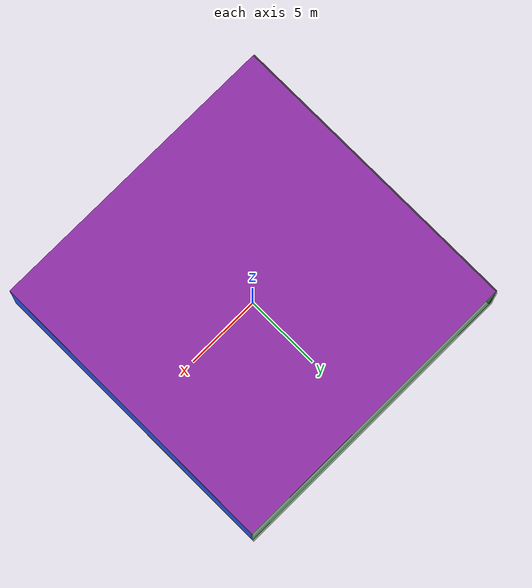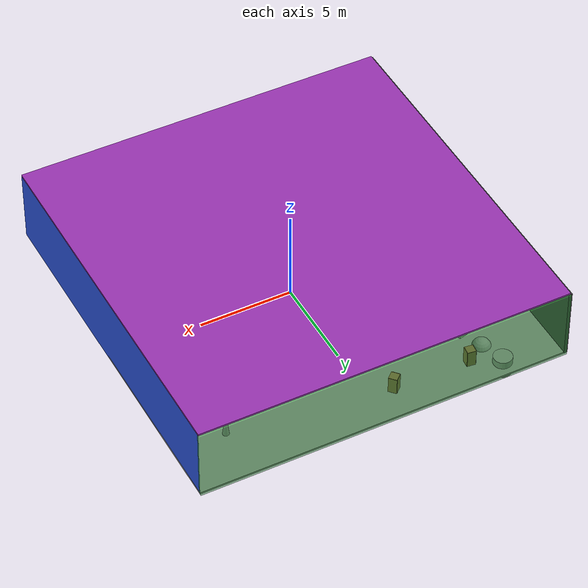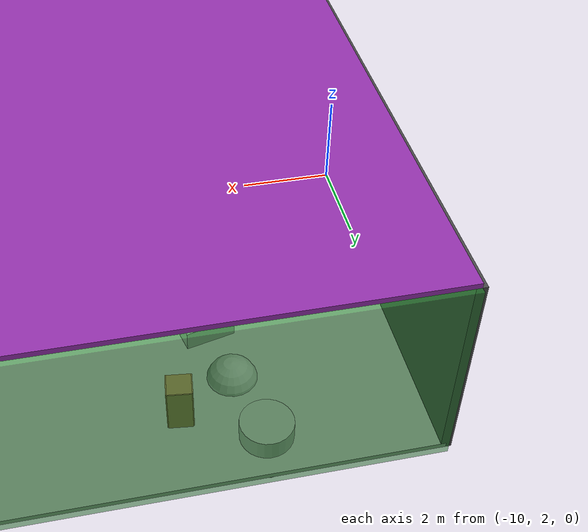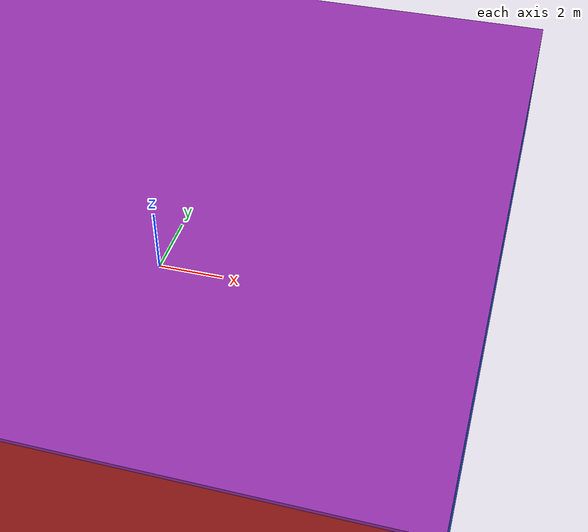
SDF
<sdf version="1.4">
 <world name="default">
  <physics type="ode">
   <max_step_size>0.001</max_step_size>
   <real_time_factor>1</real_time_factor>
   <real_time_update_rate>1000</real_time_update_rate>
   <gravity>0 0 -9.8</gravity>
  </physics>
  <scene><ambient>0.4 0.4 0.4 1</ambient><background>0.7 0.7 0.7 1</background><shadows>1</shadows></scene>
  <model name="Surrounding">
   <static>1</static>
   <link name="Ceiling">
    <collision name="Ceiling_Collision"><geometry><box><size>20 20 0.1</size></box></geometry></collision>
    <visual name="Ceiling_Visual">
     <geometry><box><size>20 20 0.1</size></box></geometry>
     <material>
      <script><uri>file://media/materials/scripts/gazebo.material</uri><name>Gazebo/Purple</name></script>
     </material>
    </visual>
    <pose>0 0 4.05 0 0 0</pose>
   </link>
   <link name="Wall_South">
    <collision name="Wall_South_Collision">
     <geometry><box><size>20 0 4</size></box></geometry>
     <pose>0 0 2 0 -0 0</pose>
    </collision>
    <visual name="Wall_South_Visual">
     <pose>0 0 2 0 -0 0</pose>
     <geometry><box><size>20 0 4</size></box></geometry>
     <material>
      <script><uri>file://media/materials/scripts/gazebo.material</uri><name>Gazebo/Red</name></script>
     </material>
    </visual>
    <velocity_decay><linear>0</linear><angular>0</angular></velocity_decay>
    <pose>0 -10 0 0 -0 0</pose>
   </link>
   <link name="Wall_East">
    <collision name="Wall_21_Collision">
     <geometry><box><size>20 0 4</size></box></geometry>
     <pose>0 0 2 0 -0 0</pose>
    </collision>
    <visual name="Wall_21_Visual">
     <pose>0 0 2 0 -0 0</pose>
     <geometry><box><size>20 0 4</size></box></geometry>
     <material>
      <script><uri>file://media/materials/scripts/gazebo.material</uri><name>Gazebo/Blue</name></script>
     </material>
    </visual>
    <velocity_decay><linear>0</linear><angular>0</angular></velocity_decay>
    <pose>10 0 0 0 -0 1.5708</pose>
   </link>
   <link name="Wall_North">
    <collision name="Wall_22_Collision">
     <geometry><box><size>20 0.2 4</size></box></geometry>
     <pose>0 0 2 0 -0 0</pose>
    </collision>
    <visual name="Wall_22_Visual">
     <pose>0 0 2 0 -0 0</pose>
     <geometry><box><size>20 0.2 4</size></box></geometry>
     <material>
      <script><uri>file://media/materials/scripts/gazebo.material</uri><name>Gazebo/GreenTransparent</name></script>
     </material>
    </visual>
    <velocity_decay><linear>0</linear><angular>0</angular></velocity_decay>
    <pose>0 10 0 0 -0 0</pose>
   </link>
   <link name="Wall_West">
    <collision name="Wall_23_Collision">
     <geometry><box><size>20 0.2 4</size></box></geometry>
     <pose>0 0 2 0 -0 0</pose>
    </collision>
    <visual name="Wall_23_Visual">
     <pose>0 0 2 0 -0 0</pose>
     <geometry><box><size>20 0.2 4</size></box></geometry>
     <material>
      <script><uri>file://media/materials/scripts/gazebo.material</uri><name>Gazebo/Road</name></script>
     </material>
    </visual>
    <velocity_decay><linear>0</linear><angular>0</angular></velocity_decay>
    <pose>-10 0 0 0 0 -1.5708</pose>
   </link>
   <link name="Ground_link">
    <collision name="collision">
     <pose>0 0 .05 0 -0 0</pose>
     <geometry><box><size>20 20 0.1</size></box></geometry>
    </collision>
    <visual name="visual">
     <pose>0 0 .05 0 -0 0</pose>
     <geometry><box><size>20 20 0.1</size></box></geometry>
     <material>
      <script><uri>file://media/materials/scripts/gazebo.material</uri><name>Gazebo/PioneerBody</name></script>
     </material>
    </visual>
   </link>
   <static>1</static>
  </model>
  <spherical_coordinates>
   <surface_model>EARTH_WGS84</surface_model>
   <latitude_deg>0</latitude_deg>
   <longitude_deg>0</longitude_deg>
   <elevation>0</elevation>
   <heading_deg>0</heading_deg>
  </spherical_coordinates>
  <light name="lightball_0" type="diffuse">
   <diffuse>0.8 0.8 0.8 1</diffuse>
   <specular>0.2 0.2 0.2 1</specular>
   <attenuation>
    <range>100</range>
    <constant>0.7</constant>
    <linear>0.01</linear>
    <quadratic>0.001</quadratic>
   </attenuation>
   <direction>-0.5 0.1 -0.9</direction>
   <pose>-4.95154682948 -8.18401057148 0.764674197385 0 0 0</pose>
  </light>
  <light name="lightball_1" type="diffuse">
   <diffuse>0.8 0.8 0.8 1</diffuse>
   <specular>0.2 0.2 0.2 1</specular>
   <attenuation>
    <range>100</range>
    <constant>0.7</constant>
    <linear>0.01</linear>
    <quadratic>0.001</quadratic>
   </attenuation>
   <direction>-0.5 0.1 -0.9</direction>
   <pose>-7.71244976139 -8.8622279514 3.39946719728 0 0 0</pose>
  </light>
  <light name="lightball_2" type="diffuse">
   <diffuse>0.8 0.8 0.8 1</diffuse>
   <specular>0.2 0.2 0.2 1</specular>
   <attenuation>
    <range>100</range>
    <constant>0.7</constant>
    <linear>0.01</linear>
    <quadratic>0.001</quadratic>
   </attenuation>
   <direction>-0.5 0.1 -0.9</direction>
   <pose>2.19648888638 5.62561967707 3.3125101601 0 0 0</pose>
  </light>
  <light name="lightball_3" type="diffuse">
   <diffuse>0.8 0.8 0.8 1</diffuse>
   <specular>0.2 0.2 0.2 1</specular>
   <attenuation>
    <range>100</range>
    <constant>0.7</constant>
    <linear>0.01</linear>
    <quadratic>0.001</quadratic>
   </attenuation>
   <direction>-0.5 0.1 -0.9</direction>
   <pose>-3.13320553038 6.84816311078 0.663209785382 0 0 0</pose>
  </light>
  <light name="lightball_4" type="diffuse">
   <diffuse>0.8 0.8 0.8 1</diffuse>
   <specular>0.2 0.2 0.2 1</specular>
   <attenuation>
    <range>100</range>
    <constant>0.7</constant>
    <linear>0.01</linear>
    <quadratic>0.001</quadratic>
   </attenuation>
   <direction>-0.5 0.1 -0.9</direction>
   <pose>8.490384792 -3.85134804998 1.19644163496 0 0 0</pose>
  </light>
  <light name="lightball_5" type="diffuse">
   <diffuse>0.8 0.8 0.8 1</diffuse>
   <specular>0.2 0.2 0.2 1</specular>
   <attenuation>
    <range>100</range>
    <constant>0.7</constant>
    <linear>0.01</linear>
    <quadratic>0.001</quadratic>
   </attenuation>
   <direction>-0.5 0.1 -0.9</direction>
   <pose>2.02691567785 -3.02675067591 2.43057190421 0 0 0</pose>
  </light>
  <light name="lightball_6" type="diffuse">
   <diffuse>0.8 0.8 0.8 1</diffuse>
   <specular>0.2 0.2 0.2 1</specular>
   <attenuation>
    <range>100</range>
    <constant>0.7</constant>
    <linear>0.01</linear>
    <quadratic>0.001</quadratic>
   </attenuation>
   <direction>-0.5 0.1 -0.9</direction>
   <pose>8.23673119801 8.38935874934 0.699088551549 0 0 0</pose>
  </light>
  <light name="lightball_7" type="diffuse">
   <diffuse>0.8 0.8 0.8 1</diffuse>
   <specular>0.2 0.2 0.2 1</specular>
   <attenuation>
    <range>100</range>
    <constant>0.7</constant>
    <linear>0.01</linear>
    <quadratic>0.001</quadratic>
   </attenuation>
   <direction>-0.5 0.1 -0.9</direction>
   <pose>-6.70878184247 -9.11736056216 2.70221138967 0 0 0</pose>
  </light>
  <light name="lightball_8" type="diffuse">
   <diffuse>0.8 0.8 0.8 1</diffuse>
   <specular>0.2 0.2 0.2 1</specular>
   <attenuation>
    <range>100</range>
    <constant>0.7</constant>
    <linear>0.01</linear>
    <quadratic>0.001</quadratic>
   </attenuation>
   <direction>-0.5 0.1 -0.9</direction>
   <pose>6.91306633483 -3.57635393341 0.68755867755 0 0 0</pose>
  </light>
  <light name="lightball_9" type="diffuse">
   <diffuse>0.8 0.8 0.8 1</diffuse>
   <specular>0.2 0.2 0.2 1</specular>
   <attenuation>
    <range>100</range>
    <constant>0.7</constant>
    <linear>0.01</linear>
    <quadratic>0.001</quadratic>
   </attenuation>
   <direction>-0.5 0.1 -0.9</direction>
   <pose>0.999119689778 -1.66045854987 0.997134703617 0 0 0</pose>
  </light>
  <include><uri>model://table</uri><pose>-7.28342559452 -1.48605227714 0 0 0 2.03809423267</pose></include>
  <include>
   <uri>model://robocup_3Dsim_goal</uri>
   <pose>-8.00737211646 5.39984622139 0 0 0 1.07306505724</pose>
  </include>
  <include>
   <uri>model://textured_shapes</uri>
   <pose>-6.55567738715 7.71762416987 0 0 0 0.228201330051</pose>
  </include>
  <include><uri>model://cabinet</uri><pose>-5.449104761 8.4564138327 0 0 0 1.45297052096</pose></include>
  <include><uri>model://cabinet</uri><pose>-1.72737456582 -4.50509867403 0 0 0 0.895668442067</pose></include>
  <include><uri>model://cabinet</uri><pose>-1.28992028689 8.33927600339 0 0 0 2.2997547853</pose></include>
  <include>
   <uri>model://robocup_3Dsim_goal</uri>
   <pose>5.06433082707 -1.29613379253 0 0 0 1.960650678</pose>
  </include>
  <include><uri>model://cabinet</uri><pose>6.50919565776 1.16618792196 0 0 0 0.0407928468412</pose></include>
  <include>
   <uri>model://construction_cone</uri>
   <pose>7.22551240845 7.18029311811 0 0 0 0.00294631741811</pose>
  </include>
 </world>
</sdf>

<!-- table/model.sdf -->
<sdf version="1.5">
  <model name="table">
    <static>true</static>
    <link name="link">
      <collision name="surface">
        <pose>0 0 1.0 0 0 0</pose>
        <geometry>
          <box>
            <size>1.5 0.8 0.03</size>
          </box>
        </geometry>
        <surface>
          <friction>
            <ode>
              <mu>0.6</mu>
              <mu2>0.6</mu2>
            </ode>
          </friction>
        </surface>
      </collision>
      <visual name="visual1">
        <pose>0 0 1.0 0 0 0</pose>
        <geometry>
          <box>
            <size>1.5 0.8 0.03</size>
          </box>
        </geometry>
        <material>
          <script>
            <uri>model://media/materials/scripts/gazebo.material</uri>
            <name>Gazebo/Wood</name>
          </script>
        </material>
      </visual>
      <collision name="front_left_leg">
        <pose>0.68 0.38 0.5 0 0 0</pose>
        <geometry>
          <cylinder>
            <radius>0.02</radius>
            <length>1.0</length>
          </cylinder>
        </geometry>
      </collision>
      <visual name="front_left_leg">
        <pose>0.68 0.38 0.5 0 0 0</pose>
        <geometry>
          <cylinder>
            <radius>0.02</radius>
            <length>1.0</length>
          </cylinder>
        </geometry>
        <material>
          <script>
            <uri>model://media/materials/scripts/gazebo.material</uri>
            <name>Gazebo/Grey</name>
          </script>
        </material>
      </visual>
      <collision name="front_right_leg">
        <pose>0.68 -0.38 0.5 0 0 0</pose>
        <geometry>
          <cylinder>
            <radius>0.02</radius>
            <length>1.0</length>
          </cylinder>
        </geometry>
      </collision>
      <visual name="front_right_leg">
        <pose>0.68 -0.38 0.5 0 0 0</pose>
        <geometry>
          <cylinder>
            <radius>0.02</radius>
            <length>1.0</length>
          </cylinder>
        </geometry>
        <material>
          <script>
            <uri>model://media/materials/scripts/gazebo.material</uri>
            <name>Gazebo/Grey</name>
          </script>
        </material>
      </visual>
      <collision name="back_right_leg">
        <pose>-0.68 -0.38 0.5 0 0 0</pose>
        <geometry>
          <cylinder>
            <radius>0.02</radius>
            <length>1.0</length>
          </cylinder>
        </geometry>
      </collision>
      <visual name="back_right_leg">
        <pose>-0.68 -0.38 0.5 0 0 0</pose>
        <geometry>
          <cylinder>
            <radius>0.02</radius>
            <length>1.0</length>
          </cylinder>
        </geometry>
        <material>
          <script>
            <uri>model://media/materials/scripts/gazebo.material</uri>
            <name>Gazebo/Grey</name>
          </script>
        </material>
      </visual>
      <collision name="back_left_leg">
        <pose>-0.68 0.38 0.5 0 0 0</pose>
        <geometry>
          <cylinder>
            <radius>0.02</radius>
            <length>1.0</length>
          </cylinder>
        </geometry>
      </collision>
      <visual name="back_left_leg">
        <pose>-0.68 0.38 0.5 0 0 0</pose>
        <geometry>
          <cylinder>
            <radius>0.02</radius>
            <length>1.0</length>
          </cylinder>
        </geometry>
        <material>
          <script>
            <uri>model://media/materials/scripts/gazebo.material</uri>
            <name>Gazebo/Grey</name>
          </script>
        </material>
      </visual>
    </link>
  </model>
</sdf>

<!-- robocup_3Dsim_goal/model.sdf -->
<sdf version="1.5">
  <model name="robocup_3d_goal">
    <static>true</static>
    <link name="left_post">
      <pose>0 1.05 0.45 0 0 0</pose>
      <collision name="collision">
        <geometry>
          <cylinder>
            <radius>0.05</radius>
            <length>0.9</length>
          </cylinder>
        </geometry>
      </collision>
      <visual name="visual">
        <geometry>
          <cylinder>
            <radius>0.05</radius>
            <length>0.9</length>
          </cylinder>
        </geometry>
        <material>
          <script>
            <uri>file://media/materials/scripts/gazebo.material</uri>
            <name>Gazebo/ZincYellow</name>
          </script>
        </material>
      </visual>
    </link>
    <link name="left_support_horiz_lower">
      <pose>0.30 1.05 0.01 0 0 0</pose>
      <collision name="collision">
        <geometry>
          <box>
            <size>0.50 0.02 0.02</size>
          </box>
        </geometry>
      </collision>
      <visual name="visual">
        <geometry>
          <box>
            <size>0.50 0.02 0.02</size>
          </box>
        </geometry>
        <material>
          <script>
            <uri>file://media/materials/scripts/gazebo.material</uri>
            <name>Gazebo/White</name>
          </script>
        </material>
      </visual>
    </link>
    <link name="left_support_horiz_upper">
      <pose>0.30 1.05 0.79 0 0 0</pose>
      <collision name="collision">
        <geometry>
          <box>
            <size>0.50 0.02 0.02</size>
          </box>
        </geometry>
      </collision>
      <visual name="visual">
        <geometry>
          <box>
            <size>0.50 0.02 0.02</size>
          </box>
        </geometry>
        <material>
          <script>
            <uri>file://media/materials/scripts/gazebo.material</uri>
            <name>Gazebo/White</name>
          </script>
        </material>
      </visual>
    </link>
    <link name="left_support_vertical">
      <pose>0.56 1.05 0.4 0 1.5708 0</pose>
      <collision name="collision">
        <geometry>
          <box>
            <size>0.80 0.02 0.02</size>
          </box>
        </geometry>
      </collision>
      <visual name="visual">
        <geometry>
          <box>
            <size>0.80 0.02 0.02</size>
          </box>
        </geometry>
        <material>
          <script>
            <uri>file://media/materials/scripts/gazebo.material</uri>
            <name>Gazebo/White</name>
          </script>
        </material>
      </visual>
    </link>
    <link name="right_support_horiz_lower">
      <pose>0.30 -1.05 0.01 0 0 0</pose>
      <collision name="collision">
        <geometry>
          <box>
            <size>0.50 0.02 0.02</size>
          </box>
        </geometry>
      </collision>
      <visual name="visual">
        <geometry>
          <box>
            <size>0.50 0.02 0.02</size>
          </box>
        </geometry>
        <material>
          <script>
            <uri>file://media/materials/scripts/gazebo.material</uri>
            <name>Gazebo/White</name>
          </script>
        </material>
      </visual>
    </link>
    <link name="right_support_horiz_upper">
      <pose>0.30 -1.05 0.79 0 0 0</pose>
      <collision name="collision">
        <geometry>
          <box>
            <size>0.50 0.02 0.02</size>
          </box>
        </geometry>
      </collision>
      <visual name="visual">
        <geometry>
          <box>
            <size>0.50 0.02 0.02</size>
          </box>
        </geometry>
        <material>
          <script>
            <uri>file://media/materials/scripts/gazebo.material</uri>
            <name>Gazebo/White</name>
          </script>
        </material>
      </visual>
    </link>
    <link name="right_support_vertical">
      <pose>0.56 -1.05 0.4 0 1.5708 0</pose>
      <collision name="collision">
        <geometry>
          <box>
            <size>0.80 0.02 0.02</size>
          </box>
        </geometry>
      </collision>
      <visual name="visual">
        <geometry>
          <box>
            <size>0.80 0.02 0.02</size>
          </box>
        </geometry>
        <material>
          <script>
            <uri>file://media/materials/scripts/gazebo.material</uri>
            <name>Gazebo/White</name>
          </script>
        </material>
      </visual>
    </link>
    <link name="center_support_horiz_lower">
      <pose>0.56 0 0.01 0 1.5708 0</pose>
      <collision name="collision">
        <geometry>
          <box>
            <size>0.02 2.08 0.02</size>
          </box>
        </geometry>
      </collision>
      <visual name="visual">
        <geometry>
          <box>
            <size>0.02 2.08 0.02</size>
          </box>
        </geometry>
        <material>
          <script>
            <uri>file://media/materials/scripts/gazebo.material</uri>
            <name>Gazebo/White</name>
          </script>
        </material>
      </visual>
    </link>
    <link name="center_support_horiz_upper">
      <pose>0.56 0 0.79 0 1.5708 0</pose>
      <collision name="collision">
        <geometry>
          <box>
            <size>0.02 2.08 0.02</size>
          </box>
        </geometry>
      </collision>
      <visual name="visual">
        <geometry>
          <box>
            <size>0.02 2.08 0.02</size>
          </box>
        </geometry>
        <material>
          <script>
            <uri>file://media/materials/scripts/gazebo.material</uri>
            <name>Gazebo/White</name>
          </script>
        </material>
      </visual>
    </link>
    <link name="right_post">
      <pose>0 -1.05 0.45 0 0 0</pose>
      <collision name="collision">
        <geometry>
          <cylinder>
            <radius>0.05</radius>
            <length>0.9</length>
          </cylinder>
        </geometry>
      </collision>
      <visual name="visual">
        <geometry>
          <cylinder>
            <radius>0.05</radius>
            <length>0.9</length>
          </cylinder>
        </geometry>
        <material>
          <script>
            <uri>file://media/materials/scripts/gazebo.material</uri>
            <name>Gazebo/ZincYellow</name>
          </script>
        </material>
      </visual>
    </link>
    <link name="crossbar">
      <pose>0 0 0.85 1.57 1.57 0</pose>
      <collision name="collision">
        <geometry>
          <cylinder>
            <radius>0.05</radius>
            <length>2.0</length>
          </cylinder>
        </geometry>
      </collision>
      <visual name="visual">
        <geometry>
          <cylinder>
            <radius>0.05</radius>
            <length>2.0</length>
          </cylinder>
        </geometry>
        <material>
          <script>
            <uri>file://media/materials/scripts/gazebo.material</uri>
            <name>Gazebo/ZincYellow</name>
          </script>
        </material>
      </visual>
    </link>
    <link name="center_net">
      <pose>0.56 0 0.40 0 0 0</pose>
      <collision name="collision">
        <geometry>
          <box>
            <size>0.01 2.1 0.80</size>
          </box>
        </geometry>
      </collision>
      <visual name="visual">
        <geometry>
          <box>
            <size>0.01 2.1 0.80</size>
          </box>
        </geometry>
        <material>
          <script>
            <uri>model://../model_source/models/robocup09_spl_field/materials/scripts/</uri>
            <uri>model://../model_source/models/robocup09_spl_field/materials/textures/</uri>
            <name>RoboCup/Net</name>
          </script>
        </material>
      </visual>
    </link>
    <link name="left_net">
      <pose>0.30 1.05 0.40 0 0 0</pose>
      <collision name="collision">
        <geometry>
          <box>
            <size>0.50 0.01 0.76</size>
          </box>
        </geometry>
      </collision>
      <visual name="visual">
        <geometry>
          <box>
            <size>0.50 0.01 0.76</size>
          </box>
        </geometry>
        <material>
          <script>
            <uri>model://../model_source/models/robocup09_spl_field/materials/scripts/</uri>
            <uri>model://../model_source/models/robocup09_spl_field/materials/textures/</uri>
            <name>RoboCup/Net</name>
          </script>
        </material>
      </visual>
    </link>
    <link name="right_net">
      <pose>0.30 -1.05 0.40 0 0 0</pose>
      <collision name="collision">
        <geometry>
          <box>
            <size>0.50 0.01 0.76</size>
          </box>
        </geometry>
      </collision>
      <visual name="visual">
        <geometry>
          <box>
            <size>0.50 0.01 0.76</size>
          </box>
        </geometry>
        <material>
          <script>
            <uri>model://../model_source/models/robocup09_spl_field/materials/scripts/</uri>
            <uri>model://../model_source/models/robocup09_spl_field/materials/textures/</uri>
            <name>RoboCup/Net</name>
          </script>
        </material>
      </visual>
    </link>
  </model>
</sdf>

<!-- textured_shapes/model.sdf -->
<sdf version="1.6">
  <model name="textured_shapes">
    <pose>0 0 0.5 0 0 0</pose>
    <link name="box">
      <pose>0 -1.5 0 0 0 0</pose>
      <collision name="collision">
        <geometry>
          <box>
            <size>1 1 1</size>
          </box>
        </geometry>
      </collision>
      <visual name="visual">
        <geometry>
          <box>
            <size>1 1 1</size>
          </box>
        </geometry>
        <material>
          <script>
            <uri>model://../model_source/models/textured_shapes/materials/scripts</uri>
            <uri>model://../model_source/models/textured_shapes/materials/textures</uri>
            <name>TexturedShape/Squares</name>
          </script>
        </material>
      </visual>
    </link>
    <link name="sphere">
      <collision name="collision">
        <geometry>
          <sphere>
            <radius>0.5</radius>
          </sphere>
        </geometry>
      </collision>
      <visual name="visual">
        <geometry>
          <sphere>
            <radius>0.5</radius>
          </sphere>
        </geometry>
        <material>
          <script>
            <uri>model://../model_source/models/textured_shapes/materials/scripts</uri>
            <uri>model://../model_source/models/textured_shapes/materials/textures</uri>
            <name>TexturedShape/Squares</name>
          </script>
        </material>
      </visual>
    </link>
    <link name="cylinder">
      <pose>0 1.5 0 0 0 0</pose>
      <collision name="collision">
        <geometry>
          <cylinder>
            <radius>0.5</radius>
            <length>1</length>
          </cylinder>
        </geometry>
      </collision>
      <visual name="visual">
        <geometry>
          <cylinder>
            <radius>0.5</radius>
            <length>1</length>
          </cylinder>
        </geometry>
        <material>
          <script>
            <uri>model://../model_source/models/textured_shapes/materials/scripts</uri>
            <uri>model://../model_source/models/textured_shapes/materials/textures</uri>
            <name>TexturedShape/Squares</name>
          </script>
        </material>
      </visual>
    </link>
  </model>
</sdf>

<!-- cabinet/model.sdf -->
<sdf version="1.5">
  <model name="cabinet">
    <static>true</static>
    <link name="cabinet_bottom_plate">
      <inertial>
        <pose>0 0 -1 0 0 0</pose>
        <inertia>
          <ixx>2.050000</ixx>
          <ixy>0</ixy>
          <ixz>0</ixz>
          <iyy>2.050000</iyy>
          <iyz>0</iyz>
          <izz>2.050000</izz>
        </inertia>
        <mass>25.000000</mass>
      </inertial>
      <collision name="cabinet_bottom_plate_geom">
        <pose>0 0 0.010000 0 0 0</pose>
        <geometry>
          <box>
            <size>0.450000 0.450000 0.020000</size>
          </box>
        </geometry>
      </collision>
      <visual name="cabinet_bottom_plate_geom_visual">
        <pose>0 0 0.010000 0 0 0</pose>
        <geometry>
          <box>
            <size>0.450000 0.450000 0.020000</size>
          </box>
        </geometry>
        <material>
          <script>
            <uri>model://media/materials/scripts/gazebo.material</uri>
            <name>Gazebo/Wood</name>
          </script>
        </material>
      </visual>
      <collision name="cabinet_bottom_plate_geom_cabinet_back_plate">
        <pose>0.235000 0 0.510000 0 0 0</pose>
        <geometry>
          <box>
            <size>0.020000 0.450000 1.020000</size>
          </box>
        </geometry>
      </collision>
      <visual name="cabinet_bottom_plate_geom_cabinet_back_plate_visual">
        <pose>0.235000 0 0.510000 0 0 0</pose>
        <geometry>
          <box>
            <size>0.020000 0.450000 1.020000</size>
          </box>
        </geometry>
        <material>
          <script>
            <uri>model://media/materials/scripts/gazebo.material</uri>
            <name>Gazebo/Wood</name>
          </script>
        </material>
      </visual>
      <collision name="cabinet_bottom_plate_geom_cabinet_left_plate">
        <pose>0 0.235000 0.510000 0 0 0</pose>
        <geometry>
          <box>
            <size>0.450000 0.020000 1.020000</size>
          </box>
        </geometry>
      </collision>
      <visual name="cabinet_bottom_plate_geom_cabinet_left_plate_visual">
        <pose>0 0.235000 0.510000 0 0 0</pose>
        <geometry>
          <box>
            <size>0.450000 0.020000 1.020000</size>
          </box>
        </geometry>
        <material>
          <script>
            <uri>model://media/materials/scripts/gazebo.material</uri>
            <name>Gazebo/Wood</name>
          </script>
        </material>
      </visual>
      <collision name="cabinet_bottom_plate_geom_cabinet_middle_plate">
        <pose>0 0 0.510000 0 0 0</pose>
        <geometry>
          <box>
            <size>0.450000 0.450000 0.020000</size>
          </box>
        </geometry>
      </collision>
      <visual name="cabinet_bottom_plate_geom_cabinet_middle_plate_visual">
        <pose>0 0 0.510000 0 0 0</pose>
        <geometry>
          <box>
            <size>0.450000 0.450000 0.020000</size>
          </box>
        </geometry>
        <material>
          <script>
            <uri>model://media/materials/scripts/gazebo.material</uri>
            <name>Gazebo/Wood</name>
          </script>
        </material>
      </visual>
      <collision name="cabinet_bottom_plate_geom_cabinet_right_plate">
        <pose>0 -0.235000 0.510000 0 0 0</pose>
        <geometry>
          <box>
            <size>0.450000 0.020000 1.020000</size>
          </box>
        </geometry>
      </collision>
      <visual name="cabinet_bottom_plate_geom_cabinet_right_plate_visual">
        <pose>0 -0.235000 0.510000 0 0 0</pose>
        <geometry>
          <box>
            <size>0.450000 0.020000 1.020000</size>
          </box>
        </geometry>
        <material>
          <script>
            <uri>model://media/materials/scripts/gazebo.material</uri>
            <name>Gazebo/Wood</name>
          </script>
        </material>
      </visual>
      <collision name="cabinet_bottom_plate_geom_cabinet_top_plate">
        <pose>0 0 1.010000 0 0 0</pose>
        <geometry>
          <box>
            <size>0.450000 0.450000 0.020000</size>
          </box>
        </geometry>
      </collision>
      <visual name="cabinet_bottom_plate_geom_cabinet_top_plate_visual">
        <pose>0 0 1.010000 0 0 0</pose>
        <geometry>
          <box>
            <size>0.450000 0.450000 0.020000</size>
          </box>
        </geometry>
        <material>
          <script>
            <uri>model://media/materials/scripts/gazebo.material</uri>
            <name>Gazebo/Wood</name>
          </script>
        </material>
      </visual>
    </link>
  </model>
</sdf>

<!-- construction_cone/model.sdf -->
<sdf version="1.5">
  <model name="Construction Cone">
    <link name="link">
      <collision name="collision">
        <geometry>
          <mesh>
            <scale>10 10 10</scale>
            <uri>file://isr-testbed/construction_cone/meshes/construction_cone.dae</uri>
          </mesh>
        </geometry>
      </collision>
      <visual name="visual">
        <geometry>
          <mesh>
            <scale>10 10 10</scale>
            <uri>file://isr-testbed/construction_cone/meshes/construction_cone.dae</uri>
          </mesh>
        </geometry>
      </visual>
    </link>
  </model>
</sdf>
